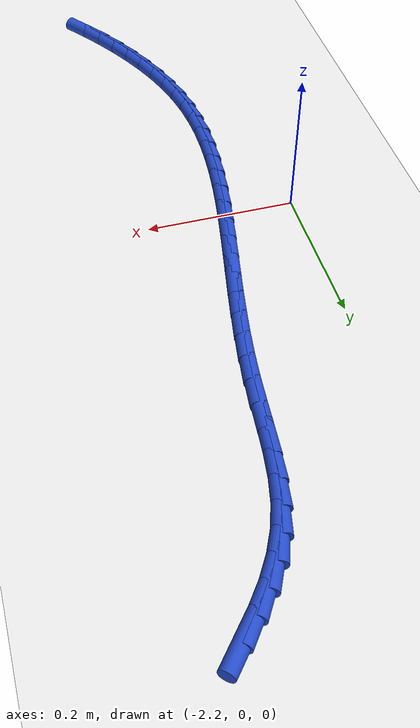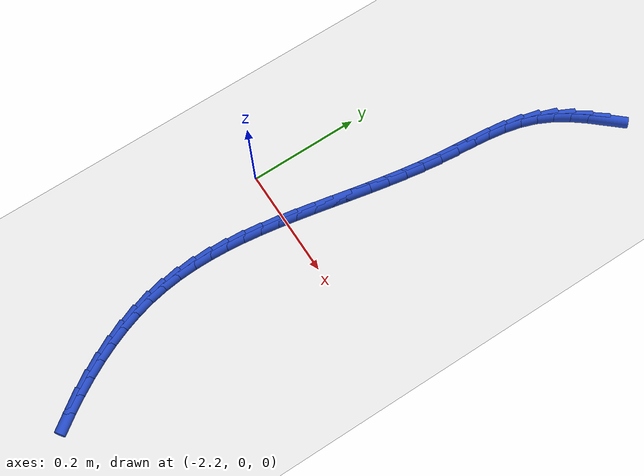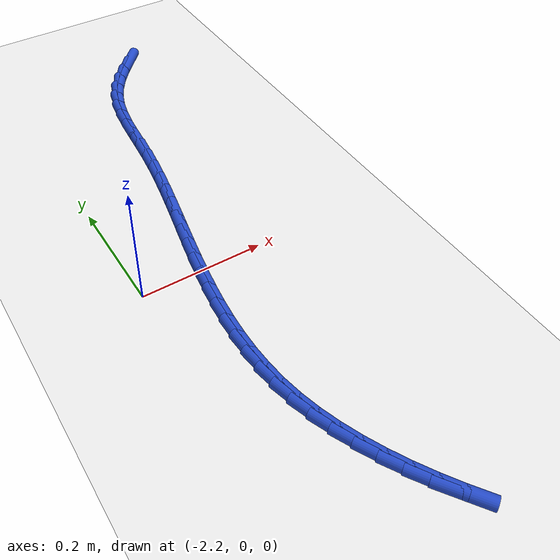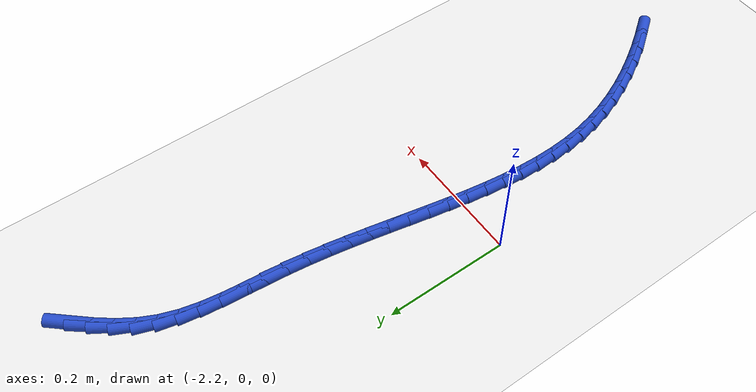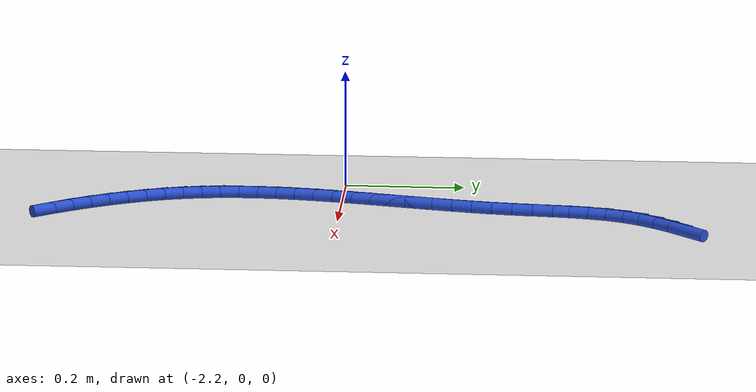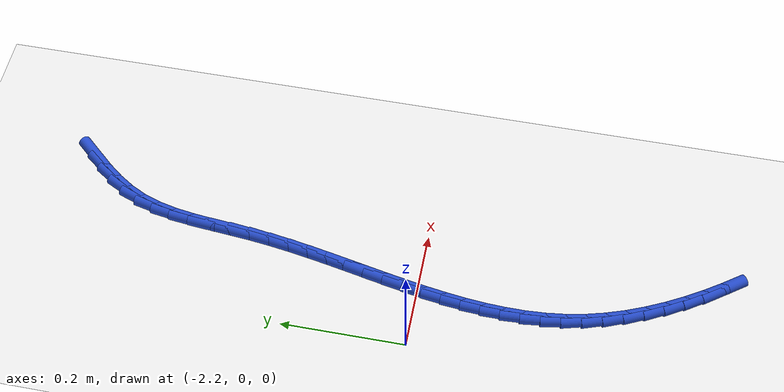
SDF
<sdf version="1.6">
 <world name="default">
  <model name="ground_plane">
   <static>1</static>
   <link name="link">
    <collision name="collision">
     <geometry><plane><normal>0 0 1</normal><size>100 100</size></plane></geometry>
     <surface><friction><ode><mu>100</mu><mu2>50</mu2></ode></friction></surface>
    </collision>
    <visual name="visual">
     <cast_shadows>0</cast_shadows>
     <geometry><plane><normal>0 0 1</normal><size>100 100</size></plane></geometry>
     <material>
      <script><uri>file://media/materials/scripts/gazebo.material</uri><name>Gazebo/WhiteGlow</name></script>
     </material>
    </visual>
   </link>
  </model>
  <model name="line">
   <link name="link_88">
    <pose>-1.9534751609631484 0.5716967308214496 0.01 0 1.57 0.8464065260040293</pose>
    <collision name="collision">
     <geometry><cylinder><radius>0.01</radius><length>0.08</length></cylinder></geometry>
    </collision>
    <visual name="visual">
     <material>
      <script><name>Gazebo/Blue</name><uri>file://media/materials/scripts/gazebo.material</uri></script>
     </material>
     <geometry><cylinder><radius>0.01</radius><length>0.08</length></cylinder></geometry>
    </visual>
   </link>
   <link name="link_89">
    <pose>-1.9741878216282622 0.5482890136307508 0.01 0 1.57 0.9115444964029439</pose>
    <collision name="collision">
     <geometry><cylinder><radius>0.01</radius><length>0.08</length></cylinder></geometry>
    </collision>
    <visual name="visual">
     <material>
      <script><name>Gazebo/Blue</name><uri>file://media/materials/scripts/gazebo.material</uri></script>
     </material>
     <geometry><cylinder><radius>0.01</radius><length>0.08</length></cylinder></geometry>
    </visual>
   </link>
   <link name="link_90">
    <pose>-1.9929305923707248 0.5241018842180165 0.01 0 1.57 0.9997572774891038</pose>
    <collision name="collision">
     <geometry><cylinder><radius>0.01</radius><length>0.08</length></cylinder></geometry>
    </collision>
    <visual name="visual">
     <material>
      <script><name>Gazebo/Blue</name><uri>file://media/materials/scripts/gazebo.material</uri></script>
     </material>
     <geometry><cylinder><radius>0.01</radius><length>0.08</length></cylinder></geometry>
    </visual>
   </link>
   <link name="link_91">
    <pose>-2.0092125634863893 0.4987577491680988 0.01 0 1.57 1.1104013209650891</pose>
    <collision name="collision">
     <geometry><cylinder><radius>0.01</radius><length>0.08</length></cylinder></geometry>
    </collision>
    <visual name="visual">
     <material>
      <script><name>Gazebo/Blue</name><uri>file://media/materials/scripts/gazebo.material</uri></script>
     </material>
     <geometry><cylinder><radius>0.01</radius><length>0.08</length></cylinder></geometry>
    </visual>
   </link>
   <link name="link_92">
    <pose>-2.022542825271108 0.4718790150658488 0.01 0 1.57 1.23686422084998</pose>
    <collision name="collision">
     <geometry><cylinder><radius>0.01</radius><length>0.08</length></cylinder></geometry>
    </collision>
    <visual name="visual">
     <material>
      <script><name>Gazebo/Blue</name><uri>file://media/materials/scripts/gazebo.material</uri></script>
     </material>
     <geometry><cylinder><radius>0.01</radius><length>0.08</length></cylinder></geometry>
    </visual>
   </link>
   <link name="link_93">
    <pose>-2.0325142716973437 0.4431365836718607 0.01 0 1.57 1.345286339407947</pose>
    <collision name="collision">
     <geometry><cylinder><radius>0.01</radius><length>0.08</length></cylinder></geometry>
    </collision>
    <visual name="visual">
     <material>
      <script><name>Gazebo/Blue</name><uri>file://media/materials/scripts/gazebo.material</uri></script>
     </material>
     <geometry><cylinder><radius>0.01</radius><length>0.08</length></cylinder></geometry>
    </visual>
   </link>
   <link name="link_94">
    <pose>-2.0395067199440184 0.41265673031429295 0.01 0 1.57 1.420433913080323</pose>
    <collision name="collision">
     <geometry><cylinder><radius>0.01</radius><length>0.08</length></cylinder></geometry>
    </collision>
    <visual name="visual">
     <material>
      <script><name>Gazebo/Blue</name><uri>file://media/materials/scripts/gazebo.material</uri></script>
     </material>
     <geometry><cylinder><radius>0.01</radius><length>0.08</length></cylinder></geometry>
    </visual>
   </link>
   <link name="link_95">
    <pose>-2.0443309159976875 0.3808150984767818 0.01 0 1.57 1.4654430546764294</pose>
    <collision name="collision">
     <geometry><cylinder><radius>0.01</radius><length>0.08</length></cylinder></geometry>
    </collision>
    <visual name="visual">
     <material>
      <script><name>Gazebo/Blue</name><uri>file://media/materials/scripts/gazebo.material</uri></script>
     </material>
     <geometry><cylinder><radius>0.01</radius><length>0.08</length></cylinder></geometry>
    </visual>
   </link>
   <link name="link_96">
    <pose>-2.047802011809669 0.3479898812689988 0.01 0 1.57 1.483282049844301</pose>
    <collision name="collision">
     <geometry><cylinder><radius>0.01</radius><length>0.08</length></cylinder></geometry>
    </collision>
    <visual name="visual">
     <material>
      <script><name>Gazebo/Blue</name><uri>file://media/materials/scripts/gazebo.material</uri></script>
     </material>
     <geometry><cylinder><radius>0.01</radius><length>0.08</length></cylinder></geometry>
    </visual>
   </link>
   <link name="link_97">
    <pose>-2.050735159331285 0.31455927180061494 0.01 0 1.57 1.4757019498879642</pose>
    <collision name="collision">
     <geometry><cylinder><radius>0.01</radius><length>0.08</length></cylinder></geometry>
    </collision>
    <visual name="visual">
     <material>
      <script><name>Gazebo/Blue</name><uri>file://media/materials/scripts/gazebo.material</uri></script>
     </material>
     <geometry><cylinder><radius>0.01</radius><length>0.08</length></cylinder></geometry>
    </visual>
   </link>
   <link name="link_98">
    <pose>-2.0539455105138558 0.28090146318130066 0.01 0 1.57 1.4476757739323505</pose>
    <collision name="collision">
     <geometry><cylinder><radius>0.01</radius><length>0.08</length></cylinder></geometry>
    </collision>
    <visual name="visual">
     <material>
      <script><name>Gazebo/Blue</name><uri>file://media/materials/scripts/gazebo.material</uri></script>
     </material>
     <geometry><cylinder><radius>0.01</radius><length>0.08</length></cylinder></geometry>
    </visual>
   </link>
   <link name="link_99">
    <pose>-2.0580987008788947 0.2473393696405093 0.01 0 1.57 1.419792785299064</pose>
    <collision name="collision">
     <geometry><cylinder><radius>0.01</radius><length>0.08</length></cylinder></geometry>
    </collision>
    <visual name="visual">
     <material>
      <script><name>Gazebo/Blue</name><uri>file://media/materials/scripts/gazebo.material</uri></script>
     </material>
     <geometry><cylinder><radius>0.01</radius><length>0.08</length></cylinder></geometry>
    </visual>
   </link>
   <link name="link_100">
    <pose>-2.0631801388192175 0.2139444133541593 0.01 0 1.57 1.397934028483175</pose>
    <collision name="collision">
     <geometry><cylinder><radius>0.01</radius><length>0.08</length></cylinder></geometry>
    </collision>
    <visual name="visual">
     <material>
      <script><name>Gazebo/Blue</name><uri>file://media/materials/scripts/gazebo.material</uri></script>
     </material>
     <geometry><cylinder><radius>0.01</radius><length>0.08</length></cylinder></geometry>
    </visual>
   </link>
   <link name="link_101">
    <pose>-2.068981889919397 0.18071653422727982 0.01 0 1.57 1.3820842591566451</pose>
    <collision name="collision">
     <geometry><cylinder><radius>0.01</radius><length>0.08</length></cylinder></geometry>
    </collision>
    <visual name="visual">
     <material>
      <script><name>Gazebo/Blue</name><uri>file://media/materials/scripts/gazebo.material</uri></script>
     </material>
     <geometry><cylinder><radius>0.01</radius><length>0.08</length></cylinder></geometry>
    </visual>
   </link>
   <link name="link_102">
    <pose>-2.075296006335812 0.14765566720025844 0.01 0 1.57 1.372239088665387</pose>
    <collision name="collision">
     <geometry><cylinder><radius>0.01</radius><length>0.08</length></cylinder></geometry>
    </collision>
    <visual name="visual">
     <material>
      <script><name>Gazebo/Blue</name><uri>file://media/materials/scripts/gazebo.material</uri></script>
     </material>
     <geometry><cylinder><radius>0.01</radius><length>0.08</length></cylinder></geometry>
    </visual>
   </link>
   <link name="link_103">
    <pose>-2.081914540224841 0.11476174721348167 0.01 0 1.57 1.368422947065007</pose>
    <collision name="collision">
     <geometry><cylinder><radius>0.01</radius><length>0.08</length></cylinder></geometry>
    </collision>
    <visual name="visual">
     <material>
      <script><name>Gazebo/Blue</name><uri>file://media/materials/scripts/gazebo.material</uri></script>
     </material>
     <geometry><cylinder><radius>0.01</radius><length>0.08</length></cylinder></geometry>
    </visual>
   </link>
   <link name="link_104">
    <pose>-2.088629543742863 0.08203470920733646 0.01 0 1.57 1.3707006971871254</pose>
    <collision name="collision">
     <geometry><cylinder><radius>0.01</radius><length>0.08</length></cylinder></geometry>
    </collision>
    <visual name="visual">
     <material>
      <script><name>Gazebo/Blue</name><uri>file://media/materials/scripts/gazebo.material</uri></script>
     </material>
     <geometry><cylinder><radius>0.01</radius><length>0.08</length></cylinder></geometry>
    </visual>
   </link>
   <link name="link_105">
    <pose>-2.0952330690462544 0.04947448812220973 0.01 0 1.57 1.379183553240131</pose>
    <collision name="collision">
     <geometry><cylinder><radius>0.01</radius><length>0.08</length></cylinder></geometry>
    </collision>
    <visual name="visual">
     <material>
      <script><name>Gazebo/Blue</name><uri>file://media/materials/scripts/gazebo.material</uri></script>
     </material>
     <geometry><cylinder><radius>0.01</radius><length>0.08</length></cylinder></geometry>
    </visual>
   </link>
   <link name="link_106">
    <pose>-2.1015171682913962 0.017081018898487618 0.01 0 1.57 1.3940290499937653</pose>
    <collision name="collision">
     <geometry><cylinder><radius>0.01</radius><length>0.08</length></cylinder></geometry>
    </collision>
    <visual name="visual">
     <material>
      <script><name>Gazebo/Blue</name><uri>file://media/materials/scripts/gazebo.material</uri></script>
     </material>
     <geometry><cylinder><radius>0.01</radius><length>0.08</length></cylinder></geometry>
    </visual>
   </link>
   <link name="link_107">
    <pose>-2.1072738936346656 -0.01514576352344139 0.01 0 1.57 1.4154341234439043</pose>
    <collision name="collision">
     <geometry><cylinder><radius>0.01</radius><length>0.08</length></cylinder></geometry>
    </collision>
    <visual name="visual">
     <material>
      <script><name>Gazebo/Blue</name><uri>file://media/materials/scripts/gazebo.material</uri></script>
     </material>
     <geometry><cylinder><radius>0.01</radius><length>0.08</length></cylinder></geometry>
    </visual>
   </link>
   <link name="link_108">
    <pose>-2.1122952972324414 -0.047205924203191245 0.01 0 1.57 1.443619611413756</pose>
    <collision name="collision">
     <geometry><cylinder><radius>0.01</radius><length>0.08</length></cylinder></geometry>
    </collision>
    <visual name="visual">
     <material>
      <script><name>Gazebo/Blue</name><uri>file://media/materials/scripts/gazebo.material</uri></script>
     </material>
     <geometry><cylinder><radius>0.01</radius><length>0.08</length></cylinder></geometry>
    </visual>
   </link>
   <link name="link_109">
    <pose>-2.1163734312411018 -0.0790995282003749 0.01 0 1.57 1.4788038560043302</pose>
    <collision name="collision">
     <geometry><cylinder><radius>0.01</radius><length>0.08</length></cylinder></geometry>
    </collision>
    <visual name="visual">
     <material>
      <script><name>Gazebo/Blue</name><uri>file://media/materials/scripts/gazebo.material</uri></script>
     </material>
     <geometry><cylinder><radius>0.01</radius><length>0.08</length></cylinder></geometry>
    </visual>
   </link>
   <link name="link_110">
    <pose>-2.1193003478170245 -0.11082664057460553 0.01 0 1.57 1.5211629402948066</pose>
    <collision name="collision">
     <geometry><cylinder><radius>0.01</radius><length>0.08</length></cylinder></geometry>
    </collision>
    <visual name="visual">
     <material>
      <script><name>Gazebo/Blue</name><uri>file://media/materials/scripts/gazebo.material</uri></script>
     </material>
     <geometry><cylinder><radius>0.01</radius><length>0.08</length></cylinder></geometry>
    </visual>
   </link>
   <link name="link_111">
    <pose>-2.120868099116589 -0.1423873263854962 0.01 0 1.57 1.5707759989299488</pose>
    <collision name="collision">
     <geometry><cylinder><radius>0.01</radius><length>0.08</length></cylinder></geometry>
    </collision>
    <visual name="visual">
     <material>
      <script><name>Gazebo/Blue</name><uri>file://media/materials/scripts/gazebo.material</uri></script>
     </material>
     <geometry><cylinder><radius>0.01</radius><length>0.08</length></cylinder></geometry>
    </visual>
   </link>
   <link name="link_112">
    <pose>-2.1208687372961736 -0.17378165069266072 0.01 0 1.57 -1.514035880659315</pose>
    <collision name="collision">
     <geometry><cylinder><radius>0.01</radius><length>0.08</length></cylinder></geometry>
    </collision>
    <visual name="visual">
     <material>
      <script><name>Gazebo/Blue</name><uri>file://media/materials/scripts/gazebo.material</uri></script>
     </material>
     <geometry><cylinder><radius>0.01</radius><length>0.08</length></cylinder></geometry>
    </visual>
   </link>
   <link name="link_113">
    <pose>-2.1190943145121564 -0.20500967855571067 0.01 0 1.57 -1.4504148954085696</pose>
    <collision name="collision">
     <geometry><cylinder><radius>0.01</radius><length>0.08</length></cylinder></geometry>
    </collision>
    <visual name="visual">
     <material>
      <script><name>Gazebo/Blue</name><uri>file://media/materials/scripts/gazebo.material</uri></script>
     </material>
     <geometry><cylinder><radius>0.01</radius><length>0.08</length></cylinder></geometry>
    </visual>
   </link>
   <link name="link_114">
    <pose>-2.1153368829209165 -0.23607147503425996 0.01 0 1.57 -1.3805933088561524</pose>
    <collision name="collision">
     <geometry><cylinder><radius>0.01</radius><length>0.08</length></cylinder></geometry>
    </collision>
    <visual name="visual">
     <material>
      <script><name>Gazebo/Blue</name><uri>file://media/materials/scripts/gazebo.material</uri></script>
     </material>
     <geometry><cylinder><radius>0.01</radius><length>0.08</length></cylinder></geometry>
    </visual>
   </link>
   <link name="link_115">
    <pose>-2.109388537775367 -0.2669670945738823 0.01 0 1.57 -1.3080443837125162</pose>
    <collision name="collision">
     <geometry><cylinder><radius>0.01</radius><length>0.08</length></cylinder></geometry>
    </collision>
    <visual name="visual">
     <material>
      <script><name>Gazebo/Blue</name><uri>file://media/materials/scripts/gazebo.material</uri></script>
     </material>
     <geometry><cylinder><radius>0.01</radius><length>0.08</length></cylinder></geometry>
    </visual>
   </link>
   <link name="link_116">
    <pose>-2.1011290185455165 -0.2976750061454628 0.01 0 1.57 -1.2409234858547042</pose>
    <collision name="collision">
     <geometry><cylinder><radius>0.01</radius><length>0.08</length></cylinder></geometry>
    </collision>
    <visual name="visual">
     <material>
      <script><name>Gazebo/Blue</name><uri>file://media/materials/scripts/gazebo.material</uri></script>
     </material>
     <geometry><cylinder><radius>0.01</radius><length>0.08</length></cylinder></geometry>
    </visual>
   </link>
   <link name="link_117">
    <pose>-2.0907097033669713 -0.3281067781332328 0.01 0 1.57 -1.1801900179687543</pose>
    <collision name="collision">
     <geometry><cylinder><radius>0.01</radius><length>0.08</length></cylinder></geometry>
    </collision>
    <visual name="visual">
     <material>
      <script><name>Gazebo/Blue</name><uri>file://media/materials/scripts/gazebo.material</uri></script>
     </material>
     <geometry><cylinder><radius>0.01</radius><length>0.08</length></cylinder></geometry>
    </visual>
   </link>
   <link name="link_118">
    <pose>-2.078334437924342 -0.3581610569399318 0.01 0 1.57 -1.1251697444947344</pose>
    <collision name="collision">
     <geometry><cylinder><radius>0.01</radius><length>0.08</length></cylinder></geometry>
    </collision>
    <visual name="visual">
     <material>
      <script><name>Gazebo/Blue</name><uri>file://media/materials/scripts/gazebo.material</uri></script>
     </material>
     <geometry><cylinder><radius>0.01</radius><length>0.08</length></cylinder></geometry>
    </visual>
   </link>
   <link name="link_119">
    <pose>-2.064207067902244 -0.38773648896830054 0.01 0 1.57 -1.0751771106199306</pose>
    <collision name="collision">
     <geometry><cylinder><radius>0.01</radius><length>0.08</length></cylinder></geometry>
    </collision>
    <visual name="visual">
     <material>
      <script><name>Gazebo/Blue</name><uri>file://media/materials/scripts/gazebo.material</uri></script>
     </material>
     <geometry><cylinder><radius>0.01</radius><length>0.08</length></cylinder></geometry>
    </visual>
   </link>
   <link name="link_120">
    <pose>-2.048531438985291 -0.41673172062107733 0.01 0 1.57 -1.0295504817842873</pose>
    <collision name="collision">
     <geometry><cylinder><radius>0.01</radius><length>0.08</length></cylinder></geometry>
    </collision>
    <visual name="visual">
     <material>
      <script><name>Gazebo/Blue</name><uri>file://media/materials/scripts/gazebo.material</uri></script>
     </material>
     <geometry><cylinder><radius>0.01</radius><length>0.08</length></cylinder></geometry>
    </visual>
   </link>
   <link name="link_121">
    <pose>-2.031511396858096 -0.44504539830100265 0.01 0 1.57 -0.987668750256269</pose>
    <collision name="collision">
     <geometry><cylinder><radius>0.01</radius><length>0.08</length></cylinder></geometry>
    </collision>
    <visual name="visual">
     <material>
      <script><name>Gazebo/Blue</name><uri>file://media/materials/scripts/gazebo.material</uri></script>
     </material>
     <geometry><cylinder><radius>0.01</radius><length>0.08</length></cylinder></geometry>
    </visual>
   </link>
   <link name="link_122">
    <pose>-2.0133507872052725 -0.47257616841081646 0.01 0 1.57 -0.9487599859823792</pose>
    <collision name="collision">
     <geometry><cylinder><radius>0.01</radius><length>0.08</length></cylinder></geometry>
    </collision>
    <visual name="visual">
     <material>
      <script><name>Gazebo/Blue</name><uri>file://media/materials/scripts/gazebo.material</uri></script>
     </material>
     <geometry><cylinder><radius>0.01</radius><length>0.08</length></cylinder></geometry>
    </visual>
   </link>
  </model>
 </world>
</sdf>
